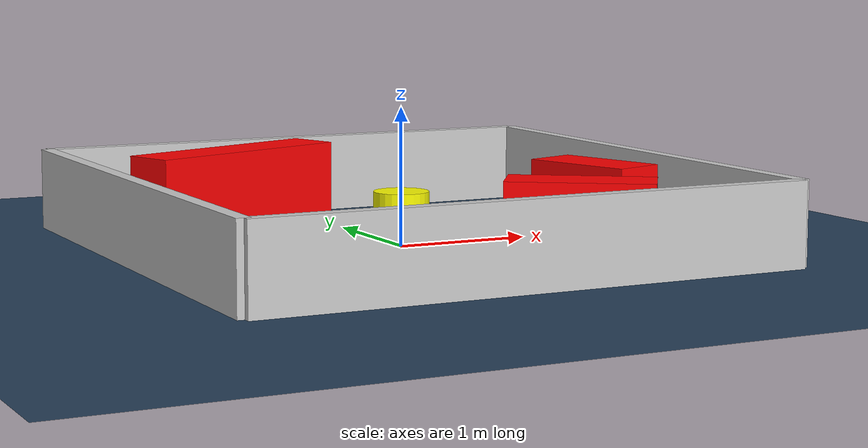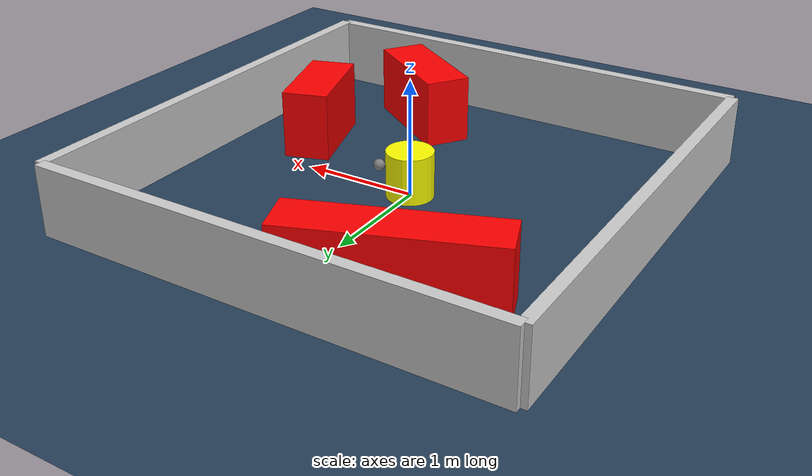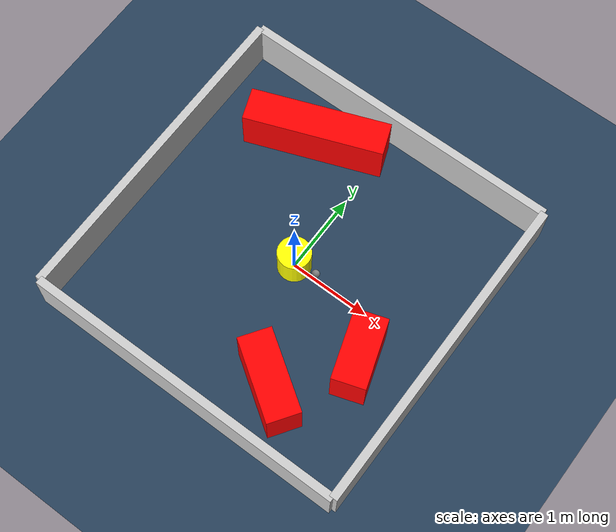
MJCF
<?xml version="1.0" ?>
<mujoco model="generated_environment">
  <option timestep="0.01" integrator="RK4" cone="elliptic"/>
  <default>
    <geom density="1"/>
  </default>
  <asset>
    <texture builtin="gradient" height="3072" rgb1="0.3 0.5 0.7" rgb2="0 0 0" type="skybox" width="512"/>
    <texture builtin="checker" height="300" mark="edge" markrgb="0.8 0.8 0.8" name="groundplane" rgb1="0.2 0.3 0.4" rgb2="0.1 0.2 0.3" type="2d" width="300"/>
    <material name="groundplane" reflectance="0.2" texrepeat="5 5" texture="groundplane" texuniform="true"/>
    <material name="robot" rgba="0.0 1.0 0.0 1"/>
  </asset>
  <worldbody>
    <light dir="0 0 -1" directional="true" pos="0 0 1.5"/>
    <geom condim="4" friction="1.0 0.005 0.001" material="groundplane" name="floor" size="0 0 0.05" type="plane"/>
    <body name="walls">
      <geom name="wall_1" condim="4" pos="-2.0 0.0 0.3" rgba="0.800000011920929 0.800000011920929 0.800000011920929 1.0" size="0.05 2.0 0.3" type="box"/>
      <geom name="wall_2" condim="4" pos="2.0 0.0 0.3" rgba="0.800000011920929 0.800000011920929 0.800000011920929 1.0" size="0.05 2.0 0.3" type="box"/>
      <geom name="wall_3" condim="4" pos="0.0 -2.0 0.3" rgba="0.800000011920929 0.800000011920929 0.800000011920929 1.0" size="2.0 0.05 0.3" type="box"/>
      <geom name="wall_4" condim="4" pos="0.0 2.0 0.3" rgba="0.800000011920929 0.800000011920929 0.800000011920929 1.0" size="2.0 0.05 0.3" type="box"/>
    </body>
    <body name="robot">
      <joint name="joint_x" type="slide" pos="0 0 0" axis="1 0 0"/>
      <joint name="joint_y" type="slide" pos="0 0 0" axis="0 1 0"/>
      <geom name="robot" type="sphere" pos="0.3 0.0 0.2" size="0.05" mass="5." friction="1.0 0.005 0.0001" condim="4" rgba="0.5 0.5 0.5 1.0"/>
      <site name="sensor_ball"/>
    </body>
    <body name="obstacle_movable_1">
      <geom name="obstacle_movable_1" condim="4" pos="0.0 0.0 0.2" euler="0 0 0.0" friction="1.0 0.005 0.001" rgba="1.0 1.0 0.0 1.0" size="0.2 0.2 0.0" type="cylinder" mass="0.1"/>
      <joint type="free"/>
    </body>
    <body name="obstacle_2_static">
      <geom name="obstacle_2_static" condim="4" pos="1.279609164434805 -0.5272137584182286 0.3" euler="0 0 288.08065292801666" friction="1.0 0.005 0.001" rgba="1 0 0 1" size="0.4201841097835729 0.2 0.3" type="box"/>
    </body>
    <body name="obstacle_3_static">
      <geom name="obstacle_3_static" condim="4" pos="0.6744324643034041 -1.3450955240818963 0.3" euler="0 0 325.8218901072629" friction="1.0 0.005 0.001" rgba="1 0 0 1" size="0.5045497606802027 0.2 0.3" type="box"/>
    </body>
    <body name="obstacle_4_static">
      <geom name="obstacle_4_static" condim="4" pos="-0.7266999265072802 1.3984198253210567 0.3" euler="0 0 200.6055812890785" friction="1.0 0.005 0.001" rgba="1 0 0 1" size="0.8415363120945802 0.2 0.3" type="box"/>
    </body>
  </worldbody>
  <actuator>
    <motor name="actuator_x" joint="joint_x" gear="1" ctrlrange="-1 1"/>
    <motor name="actuator_y" joint="joint_y" gear="1" ctrlrange="-1 1"/>
  </actuator>
</mujoco>
